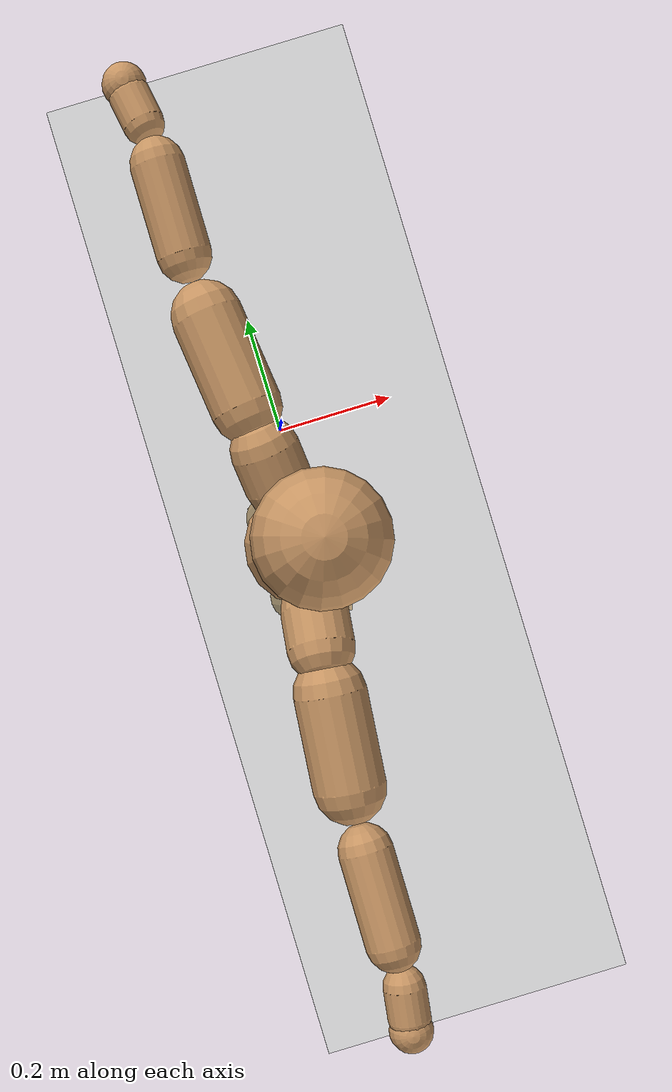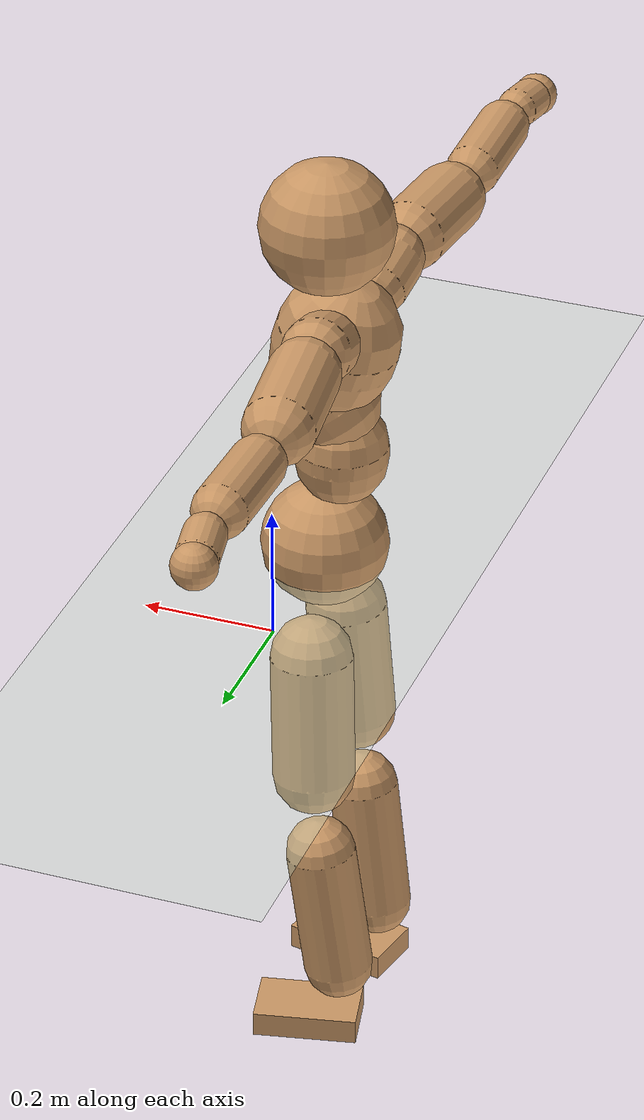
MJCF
<mujoco model="humanoid">
  <compiler coordinate="local"/>
  <default>
    <joint damping="0.0" armature="0.01" stiffness="0.0" limited="true"/>
    <geom conaffinity="1" condim="3" contype="7" margin="0.001" rgba="0.8 0.6 .4 1"/>
  </default>
  <asset>
    <texture type="skybox" builtin="gradient" rgb1=".4 .5 .6" rgb2="0 0 0" width="100" height="100"/>
    <texture builtin="flat" height="1278" mark="cross" markrgb="1 1 1" name="texgeom" random="0.01" rgb1="0.8 0.6 0.4" rgb2="0.8 0.6 0.4" type="cube" width="127"/>
    <texture builtin="checker" height="100" name="texplane" rgb1="0 0 0" rgb2="0.8 0.8 0.8" type="2d" width="100"/>
    <material name="MatPlane" reflectance="0.5" shininess="1" specular="1" texrepeat="60 60" texture="texplane"/>
    <material name="geom" texture="texgeom" texuniform="true"/>
  </asset>
  <worldbody>
    <light cutoff="100" diffuse="1 1 1" dir="-0 0 -1.3" directional="true" exponent="1" pos="0 0 1.3" specular=".1 .1 .1"/>
    <geom conaffinity="1" condim="3" name="floor" pos="0 0 0" rgba="0.8 0.9 0.8 1" size="100 100 .2" type="plane" material="MatPlane"/>
    <body name="Pelvis" pos="-0.0016 -0.2109 0.0322">
      <freejoint name="Pelvis"/>
      <geom type="sphere" contype="1" conaffinity="1" density="500" size="0.0967" pos="0.0000 0.0000 0.0000" name="Pelvis"/>
      <body name="L_Hip" pos="-0.0048 0.0733 -0.0887">
        <joint name="L_Hip_x" type="hinge" pos="0 0 0" axis="1 0 0" stiffness="800" damping="80" armature="0.02" range="-180.0000 180.0000"/>
        <joint name="L_Hip_y" type="hinge" pos="0 0 0" axis="0 1 0" stiffness="800" damping="80" armature="0.02" range="-180.0000 180.0000"/>
        <joint name="L_Hip_z" type="hinge" pos="0 0 0" axis="0 0 1" stiffness="800" damping="80" armature="0.02" range="-180.0000 180.0000"/>
        <geom type="capsule" contype="1" conaffinity="1" density="500" fromto="-0.0027 0.0048 -0.0673 -0.0106 0.0191 -0.2693" size="0.0625" name="L_Hip"/>
        <body name="L_Knee" pos="-0.0133 0.0239 -0.3367">
          <joint name="L_Knee_x" type="hinge" pos="0 0 0" axis="1 0 0" stiffness="800" damping="80" armature="0.02" range="-180.0000 180.0000"/>
          <joint name="L_Knee_y" type="hinge" pos="0 0 0" axis="0 1 0" stiffness="800" damping="80" armature="0.02" range="-180.0000 180.0000"/>
          <joint name="L_Knee_z" type="hinge" pos="0 0 0" axis="0 0 1" stiffness="800" damping="80" armature="0.02" range="-180.0000 180.0000"/>
          <geom type="capsule" contype="1" conaffinity="1" density="500" fromto="-0.0087 -0.0022 -0.0712 -0.0349 -0.0087 -0.2849" size="0.0534" name="L_Knee"/>
          <body name="L_Ankle" pos="-0.0436 -0.0108 -0.3561">
            <joint name="L_Ankle_x" type="hinge" pos="0 0 0" axis="1 0 0" stiffness="800" damping="80" armature="0.02" range="-180.0000 180.0000"/>
            <joint name="L_Ankle_y" type="hinge" pos="0 0 0" axis="0 1 0" stiffness="800" damping="80" armature="0.02" range="-180.0000 180.0000"/>
            <joint name="L_Ankle_z" type="hinge" pos="0 0 0" axis="0 0 1" stiffness="800" damping="80" armature="0.02" range="-180.0000 180.0000"/>
            <geom type="box" contype="1" conaffinity="1" density="500" pos="0.0550 0.0122 -0.0260" size="0.0802 0.047 0.0199" quat="0.9941 0.0000 0.0000 0.1085" name="L_Ankle"/>
            <body name="L_Toe" pos="0.11 0.0243 -0.052">
              <joint name="L_Toe_x" type="hinge" pos="0 0 0" axis="1 0 0" stiffness="500" damping="50" armature="0.02" range="-180.0000 180.0000"/>
              <joint name="L_Toe_y" type="hinge" pos="0 0 0" axis="0 1 0" stiffness="500" damping="50" armature="0.02" range="-180.0000 180.0000"/>
              <joint name="L_Toe_z" type="hinge" pos="0 0 0" axis="0 0 1" stiffness="500" damping="50" armature="0.02" range="-180.0000 180.0000"/>
              <geom type="box" contype="1" conaffinity="1" density="500" pos="0.0000 0.0000 0.0254" size="0.001 0.0024 0.001" quat="0.9934 0.0000 0.0000 0.1151" name="L_Toe"/>
            </body>
          </body>
        </body>
      </body>
      <body name="R_Hip" pos="-0.0018 -0.0712 -0.0889">
        <joint name="R_Hip_x" type="hinge" pos="0 0 0" axis="1 0 0" stiffness="800" damping="80" armature="0.02" range="-180.0000 180.0000"/>
        <joint name="R_Hip_y" type="hinge" pos="0 0 0" axis="0 1 0" stiffness="800" damping="80" armature="0.02" range="-180.0000 180.0000"/>
        <joint name="R_Hip_z" type="hinge" pos="0 0 0" axis="0 0 1" stiffness="800" damping="80" armature="0.02" range="-180.0000 180.0000"/>
        <geom type="capsule" contype="1" conaffinity="1" density="500" fromto="-0.0030 -0.0059 -0.0681 -0.0122 -0.0237 -0.2725" size="0.0619" name="R_Hip"/>
        <body name="R_Knee" pos="-0.0152 -0.0296 -0.3406">
          <joint name="R_Knee_x" type="hinge" pos="0 0 0" axis="1 0 0" stiffness="800" damping="80" armature="0.02" range="-180.0000 180.0000"/>
          <joint name="R_Knee_y" type="hinge" pos="0 0 0" axis="0 1 0" stiffness="800" damping="80" armature="0.02" range="-180.0000 180.0000"/>
          <joint name="R_Knee_z" type="hinge" pos="0 0 0" axis="0 0 1" stiffness="800" damping="80" armature="0.02" range="-180.0000 180.0000"/>
          <geom type="capsule" contype="1" conaffinity="1" density="500" fromto="-0.0085 0.0025 -0.0713 -0.0341 0.0100 -0.2852" size="0.0535" name="R_Knee"/>
          <body name="R_Ankle" pos="-0.0426 0.0125 -0.3565">
            <joint name="R_Ankle_x" type="hinge" pos="0 0 0" axis="1 0 0" stiffness="800" damping="80" armature="0.02" range="-180.0000 180.0000"/>
            <joint name="R_Ankle_y" type="hinge" pos="0 0 0" axis="0 1 0" stiffness="800" damping="80" armature="0.02" range="-180.0000 180.0000"/>
            <joint name="R_Ankle_z" type="hinge" pos="0 0 0" axis="0 0 1" stiffness="800" damping="80" armature="0.02" range="-180.0000 180.0000"/>
            <geom type="box" contype="1" conaffinity="1" density="500" pos="0.0570 -0.0119 -0.0220" size="0.0809 0.0464 0.0199" quat="0.9947 0.0000 0.0000 -0.1026" name="R_Ankle"/>
            <body name="R_Toe" pos="0.1141 -0.0238 -0.0441">
              <joint name="R_Toe_x" type="hinge" pos="0 0 0" axis="1 0 0" stiffness="500" damping="50" armature="0.02" range="-180.0000 180.0000"/>
              <joint name="R_Toe_y" type="hinge" pos="0 0 0" axis="0 1 0" stiffness="500" damping="50" armature="0.02" range="-180.0000 180.0000"/>
              <joint name="R_Toe_z" type="hinge" pos="0 0 0" axis="0 0 1" stiffness="500" damping="50" armature="0.02" range="-180.0000 180.0000"/>
              <geom type="box" contype="1" conaffinity="1" density="500" pos="0.0000 0.0000 0.0233" size="0.001 0.0023 0.0011" quat="0.9957 0.0000 0.0000 -0.0926" name="R_Toe"/>
            </body>
          </body>
        </body>
      </body>
      <body name="Torso" pos="-0.0254 -0.002 0.1024">
        <joint name="Torso_x" type="hinge" pos="0 0 0" axis="1 0 0" stiffness="1000" damping="100" armature="0.02" range="-180.0000 180.0000"/>
        <joint name="Torso_y" type="hinge" pos="0 0 0" axis="0 1 0" stiffness="1000" damping="100" armature="0.02" range="-180.0000 180.0000"/>
        <joint name="Torso_z" type="hinge" pos="0 0 0" axis="0 0 1" stiffness="1000" damping="100" armature="0.02" range="-180.0000 180.0000"/>
        <geom type="capsule" contype="1" conaffinity="1" density="500" fromto="-0.0010 0.0019 0.0710 -0.0007 0.0013 0.0474" size="0.070122" name="Torso"/>
        <body name="Spine" pos="-0.0016 0.0032 0.1184">
          <joint name="Spine_x" type="hinge" pos="0 0 0" axis="1 0 0" stiffness="1000" damping="100" armature="0.02" range="-180.0000 180.0000"/>
          <joint name="Spine_y" type="hinge" pos="0 0 0" axis="0 1 0" stiffness="1000" damping="100" armature="0.02" range="-180.0000 180.0000"/>
          <joint name="Spine_z" type="hinge" pos="0 0 0" axis="0 0 1" stiffness="1000" damping="100" armature="0.02" range="-180.0000 180.0000"/>
          <geom type="capsule" contype="1" conaffinity="1" density="500" fromto="0.0190 0.0015 0.0289 0.0127 0.0010 0.0193" size="0.071145" name="Spine"/>
          <body name="Chest" pos="0.0317 0.0024 0.0481">
            <joint name="Chest_x" type="hinge" pos="0 0 0" axis="1 0 0" stiffness="1000" damping="100" armature="0.02" range="-180.0000 180.0000"/>
            <joint name="Chest_y" type="hinge" pos="0 0 0" axis="0 1 0" stiffness="1000" damping="100" armature="0.02" range="-180.0000 180.0000"/>
            <joint name="Chest_z" type="hinge" pos="0 0 0" axis="0 0 1" stiffness="1000" damping="100" armature="0.02" range="-180.0000 180.0000"/>
            <geom type="capsule" contype="1" conaffinity="1" density="500" fromto="-0.0285 -0.0006 0.0887 -0.0190 -0.0004 0.0591" size="0.093279" name="Chest"/>
            <body name="Neck" pos="-0.0577 -0.0015 0.2062">
              <joint name="Neck_x" type="hinge" pos="0 0 0" axis="1 0 0" stiffness="500" damping="50" armature="0.02" range="-180.0000 180.0000"/>
              <joint name="Neck_y" type="hinge" pos="0 0 0" axis="0 1 0" stiffness="500" damping="50" armature="0.02" range="-180.0000 180.0000"/>
              <joint name="Neck_z" type="hinge" pos="0 0 0" axis="0 0 1" stiffness="500" damping="50" armature="0.02" range="-180.0000 180.0000"/>
              <geom type="capsule" contype="1" conaffinity="1" density="500" fromto="0.0094 0.0002 0.0112 0.0376 0.0007 0.0449" size="0.03906" name="Neck"/>
              <body name="Head" pos="0.047 0.0008 0.0562">
                <joint name="Head_x" type="hinge" pos="0 0 0" axis="1 0 0" stiffness="500" damping="50" armature="0.02" range="-180.0000 180.0000"/>
                <joint name="Head_y" type="hinge" pos="0 0 0" axis="0 1 0" stiffness="500" damping="50" armature="0.02" range="-180.0000 180.0000"/>
                <joint name="Head_z" type="hinge" pos="0 0 0" axis="0 0 1" stiffness="500" damping="50" armature="0.02" range="-180.0000 180.0000"/>
                <geom type="sphere" contype="1" conaffinity="1" density="500" size="0.1000" pos="0.0000 0.0000 0.0000" name="Head"/>
              </body>
            </body>
            <body name="L_Thorax" pos="-0.0403 0.0778 0.1194">
              <joint name="L_Thorax_x" type="hinge" pos="0 0 0" axis="1 0 0" stiffness="500" damping="50" armature="0.02" range="-180.0000 180.0000"/>
              <joint name="L_Thorax_y" type="hinge" pos="0 0 0" axis="0 1 0" stiffness="500" damping="50" armature="0.02" range="-180.0000 180.0000"/>
              <joint name="L_Thorax_z" type="hinge" pos="0 0 0" axis="0 0 1" stiffness="500" damping="50" armature="0.02" range="-180.0000 180.0000"/>
              <geom type="capsule" contype="1" conaffinity="1" density="500" fromto="-0.0021 0.0176 0.0059 -0.0082 0.0704 0.0235" size="0.0515" name="L_Thorax"/>
              <body name="L_Shoulder" pos="-0.0103 0.088 0.0294">
                <joint name="L_Shoulder_x" type="hinge" pos="0 0 0" axis="1 0 0" stiffness="500" damping="50" armature="0.02" range="-720.0000 720.0000"/>
                <joint name="L_Shoulder_y" type="hinge" pos="0 0 0" axis="0 1 0" stiffness="500" damping="50" armature="0.02" range="-720.0000 720.0000"/>
                <joint name="L_Shoulder_z" type="hinge" pos="0 0 0" axis="0 0 1" stiffness="500" damping="50" armature="0.02" range="-720.0000 720.0000"/>
                <geom type="capsule" contype="1" conaffinity="1" density="500" fromto="-0.0057 0.0484 -0.0015 -0.0229 0.1937 -0.0060" size="0.0531" name="L_Shoulder"/>
                <body name="L_Elbow" pos="-0.0286 0.2422 -0.0075">
                  <joint name="L_Elbow_x" type="hinge" pos="0 0 0" axis="1 0 0" stiffness="500" damping="50" armature="0.02" range="-720.0000 720.0000"/>
                  <joint name="L_Elbow_y" type="hinge" pos="0 0 0" axis="0 1 0" stiffness="500" damping="50" armature="0.02" range="-720.0000 720.0000"/>
                  <joint name="L_Elbow_z" type="hinge" pos="0 0 0" axis="0 0 1" stiffness="500" damping="50" armature="0.02" range="-720.0000 720.0000"/>
                  <geom type="capsule" contype="1" conaffinity="1" density="500" fromto="0.0002 0.0458 0.0016 0.0008 0.1831 0.0065" size="0.0407" name="L_Elbow"/>
                  <body name="L_Wrist" pos="0.001 0.2289 0.0081">
                    <joint name="L_Wrist_x" type="hinge" pos="0 0 0" axis="1 0 0" stiffness="300" damping="30" armature="0.02" range="-180.0000 180.0000"/>
                    <joint name="L_Wrist_y" type="hinge" pos="0 0 0" axis="0 1 0" stiffness="300" damping="30" armature="0.02" range="-180.0000 180.0000"/>
                    <joint name="L_Wrist_z" type="hinge" pos="0 0 0" axis="0 0 1" stiffness="300" damping="30" armature="0.02" range="-180.0000 180.0000"/>
                    <geom type="capsule" contype="1" conaffinity="1" density="500" fromto="-0.0027 0.0163 -0.0019 -0.0106 0.0651 -0.0077" size="0.0311" name="L_Wrist"/>
                    <body name="L_Hand" pos="-0.0133 0.0814 -0.0096">
                      <joint name="L_Hand_x" type="hinge" pos="0 0 0" axis="1 0 0" stiffness="300" damping="30" armature="0.02" range="-180.0000 180.0000"/>
                      <joint name="L_Hand_y" type="hinge" pos="0 0 0" axis="0 1 0" stiffness="300" damping="30" armature="0.02" range="-180.0000 180.0000"/>
                      <joint name="L_Hand_z" type="hinge" pos="0 0 0" axis="0 0 1" stiffness="300" damping="30" armature="0.02" range="-180.0000 180.0000"/>
                      <geom type="sphere" contype="1" conaffinity="1" density="500" size="0.0329" pos="0.0000 0.0000 0.0000" name="L_Hand"/>
                    </body>
                  </body>
                </body>
              </body>
            </body>
            <body name="R_Thorax" pos="-0.0442 -0.0792 0.1178">
              <joint name="R_Thorax_x" type="hinge" pos="0 0 0" axis="1 0 0" stiffness="500" damping="50" armature="0.02" range="-180.0000 180.0000"/>
              <joint name="R_Thorax_y" type="hinge" pos="0 0 0" axis="0 1 0" stiffness="500" damping="50" armature="0.02" range="-180.0000 180.0000"/>
              <joint name="R_Thorax_z" type="hinge" pos="0 0 0" axis="0 0 1" stiffness="500" damping="50" armature="0.02" range="-180.0000 180.0000"/>
              <geom type="capsule" contype="1" conaffinity="1" density="500" fromto="-0.0023 -0.0182 0.0060 -0.0091 -0.0727 0.0241" size="0.0506" name="R_Thorax"/>
              <body name="R_Shoulder" pos="-0.0113 -0.0909 0.0301">
                <joint name="R_Shoulder_x" type="hinge" pos="0 0 0" axis="1 0 0" stiffness="500" damping="50" armature="0.02" range="-720.0000 720.0000"/>
                <joint name="R_Shoulder_y" type="hinge" pos="0 0 0" axis="0 1 0" stiffness="500" damping="50" armature="0.02" range="-720.0000 720.0000"/>
                <joint name="R_Shoulder_z" type="hinge" pos="0 0 0" axis="0 0 1" stiffness="500" damping="50" armature="0.02" range="-720.0000 720.0000"/>
                <geom type="capsule" contype="1" conaffinity="1" density="500" fromto="-0.0041 -0.0471 -0.0020 -0.0164 -0.1885 -0.0079" size="0.0543" name="R_Shoulder"/>
                <body name="R_Elbow" pos="-0.0204 -0.2356 -0.0098">
                  <joint name="R_Elbow_x" type="hinge" pos="0 0 0" axis="1 0 0" stiffness="500" damping="50" armature="0.02" range="-720.0000 720.0000"/>
                  <joint name="R_Elbow_y" type="hinge" pos="0 0 0" axis="0 1 0" stiffness="500" damping="50" armature="0.02" range="-720.0000 720.0000"/>
                  <joint name="R_Elbow_z" type="hinge" pos="0 0 0" axis="0 0 1" stiffness="500" damping="50" armature="0.02" range="-720.0000 720.0000"/>
                  <geom type="capsule" contype="1" conaffinity="1" density="500" fromto="-0.0002 -0.0468 0.0020 -0.0008 -0.1873 0.0079" size="0.0409" name="R_Elbow"/>
                  <body name="R_Wrist" pos="-0.0009 -0.2341 0.0099">
                    <joint name="R_Wrist_x" type="hinge" pos="0 0 0" axis="1 0 0" stiffness="300" damping="30" armature="0.02" range="-180.0000 180.0000"/>
                    <joint name="R_Wrist_y" type="hinge" pos="0 0 0" axis="0 1 0" stiffness="300" damping="30" armature="0.02" range="-180.0000 180.0000"/>
                    <joint name="R_Wrist_z" type="hinge" pos="0 0 0" axis="0 0 1" stiffness="300" damping="30" armature="0.02" range="-180.0000 180.0000"/>
                    <geom type="capsule" contype="1" conaffinity="1" density="500" fromto="-0.0021 -0.0163 -0.0015 -0.0085 -0.0652 -0.0059" size="0.0317" name="R_Wrist"/>
                    <body name="R_Hand" pos="-0.0107 -0.0814 -0.0073">
                      <joint name="R_Hand_x" type="hinge" pos="0 0 0" axis="1 0 0" stiffness="300" damping="30" armature="0.02" range="-180.0000 180.0000"/>
                      <joint name="R_Hand_y" type="hinge" pos="0 0 0" axis="0 1 0" stiffness="300" damping="30" armature="0.02" range="-180.0000 180.0000"/>
                      <joint name="R_Hand_z" type="hinge" pos="0 0 0" axis="0 0 1" stiffness="300" damping="30" armature="0.02" range="-180.0000 180.0000"/>
                      <geom type="sphere" contype="1" conaffinity="1" density="500" size="0.0329" pos="0.0000 0.0000 0.0000" name="R_Hand"/>
                    </body>
                  </body>
                </body>
              </body>
            </body>
          </body>
        </body>
      </body>
    </body>
  </worldbody>
  <actuator>
    <motor name="L_Hip_x" joint="L_Hip_x" gear="500"/>
    <motor name="L_Hip_y" joint="L_Hip_y" gear="500"/>
    <motor name="L_Hip_z" joint="L_Hip_z" gear="500"/>
    <motor name="L_Knee_x" joint="L_Knee_x" gear="500"/>
    <motor name="L_Knee_y" joint="L_Knee_y" gear="500"/>
    <motor name="L_Knee_z" joint="L_Knee_z" gear="500"/>
    <motor name="L_Ankle_x" joint="L_Ankle_x" gear="500"/>
    <motor name="L_Ankle_y" joint="L_Ankle_y" gear="500"/>
    <motor name="L_Ankle_z" joint="L_Ankle_z" gear="500"/>
    <motor name="L_Toe_x" joint="L_Toe_x" gear="500"/>
    <motor name="L_Toe_y" joint="L_Toe_y" gear="500"/>
    <motor name="L_Toe_z" joint="L_Toe_z" gear="500"/>
    <motor name="R_Hip_x" joint="R_Hip_x" gear="500"/>
    <motor name="R_Hip_y" joint="R_Hip_y" gear="500"/>
    <motor name="R_Hip_z" joint="R_Hip_z" gear="500"/>
    <motor name="R_Knee_x" joint="R_Knee_x" gear="500"/>
    <motor name="R_Knee_y" joint="R_Knee_y" gear="500"/>
    <motor name="R_Knee_z" joint="R_Knee_z" gear="500"/>
    <motor name="R_Ankle_x" joint="R_Ankle_x" gear="500"/>
    <motor name="R_Ankle_y" joint="R_Ankle_y" gear="500"/>
    <motor name="R_Ankle_z" joint="R_Ankle_z" gear="500"/>
    <motor name="R_Toe_x" joint="R_Toe_x" gear="500"/>
    <motor name="R_Toe_y" joint="R_Toe_y" gear="500"/>
    <motor name="R_Toe_z" joint="R_Toe_z" gear="500"/>
    <motor name="Torso_x" joint="Torso_x" gear="500"/>
    <motor name="Torso_y" joint="Torso_y" gear="500"/>
    <motor name="Torso_z" joint="Torso_z" gear="500"/>
    <motor name="Spine_x" joint="Spine_x" gear="500"/>
    <motor name="Spine_y" joint="Spine_y" gear="500"/>
    <motor name="Spine_z" joint="Spine_z" gear="500"/>
    <motor name="Chest_x" joint="Chest_x" gear="500"/>
    <motor name="Chest_y" joint="Chest_y" gear="500"/>
    <motor name="Chest_z" joint="Chest_z" gear="500"/>
    <motor name="Neck_x" joint="Neck_x" gear="500"/>
    <motor name="Neck_y" joint="Neck_y" gear="500"/>
    <motor name="Neck_z" joint="Neck_z" gear="500"/>
    <motor name="Head_x" joint="Head_x" gear="500"/>
    <motor name="Head_y" joint="Head_y" gear="500"/>
    <motor name="Head_z" joint="Head_z" gear="500"/>
    <motor name="L_Thorax_x" joint="L_Thorax_x" gear="500"/>
    <motor name="L_Thorax_y" joint="L_Thorax_y" gear="500"/>
    <motor name="L_Thorax_z" joint="L_Thorax_z" gear="500"/>
    <motor name="L_Shoulder_x" joint="L_Shoulder_x" gear="500"/>
    <motor name="L_Shoulder_y" joint="L_Shoulder_y" gear="500"/>
    <motor name="L_Shoulder_z" joint="L_Shoulder_z" gear="500"/>
    <motor name="L_Elbow_x" joint="L_Elbow_x" gear="500"/>
    <motor name="L_Elbow_y" joint="L_Elbow_y" gear="500"/>
    <motor name="L_Elbow_z" joint="L_Elbow_z" gear="500"/>
    <motor name="L_Wrist_x" joint="L_Wrist_x" gear="500"/>
    <motor name="L_Wrist_y" joint="L_Wrist_y" gear="500"/>
    <motor name="L_Wrist_z" joint="L_Wrist_z" gear="500"/>
    <motor name="L_Hand_x" joint="L_Hand_x" gear="500"/>
    <motor name="L_Hand_y" joint="L_Hand_y" gear="500"/>
    <motor name="L_Hand_z" joint="L_Hand_z" gear="500"/>
    <motor name="R_Thorax_x" joint="R_Thorax_x" gear="500"/>
    <motor name="R_Thorax_y" joint="R_Thorax_y" gear="500"/>
    <motor name="R_Thorax_z" joint="R_Thorax_z" gear="500"/>
    <motor name="R_Shoulder_x" joint="R_Shoulder_x" gear="500"/>
    <motor name="R_Shoulder_y" joint="R_Shoulder_y" gear="500"/>
    <motor name="R_Shoulder_z" joint="R_Shoulder_z" gear="500"/>
    <motor name="R_Elbow_x" joint="R_Elbow_x" gear="500"/>
    <motor name="R_Elbow_y" joint="R_Elbow_y" gear="500"/>
    <motor name="R_Elbow_z" joint="R_Elbow_z" gear="500"/>
    <motor name="R_Wrist_x" joint="R_Wrist_x" gear="500"/>
    <motor name="R_Wrist_y" joint="R_Wrist_y" gear="500"/>
    <motor name="R_Wrist_z" joint="R_Wrist_z" gear="500"/>
    <motor name="R_Hand_x" joint="R_Hand_x" gear="500"/>
    <motor name="R_Hand_y" joint="R_Hand_y" gear="500"/>
    <motor name="R_Hand_z" joint="R_Hand_z" gear="500"/>
  </actuator>
  <contact>
    <exclude body1="Torso" body2="Chest"/>
    <exclude body1="Head" body2="Chest"/>
    <exclude body1="R_Knee" body2="R_Toe"/>
    <exclude body1="R_Knee" body2="L_Ankle"/>
    <exclude body1="R_Knee" body2="L_Toe"/>
    <exclude body1="L_Knee" body2="L_Toe"/>
    <exclude body1="L_Knee" body2="R_Ankle"/>
    <exclude body1="L_Knee" body2="R_Toe"/>
    <exclude body1="L_Shoulder" body2="Chest"/>
    <exclude body1="R_Shoulder" body2="Chest"/>
  </contact>
  <sensor/>
  <size njmax="700" nconmax="700"/>
</mujoco>
